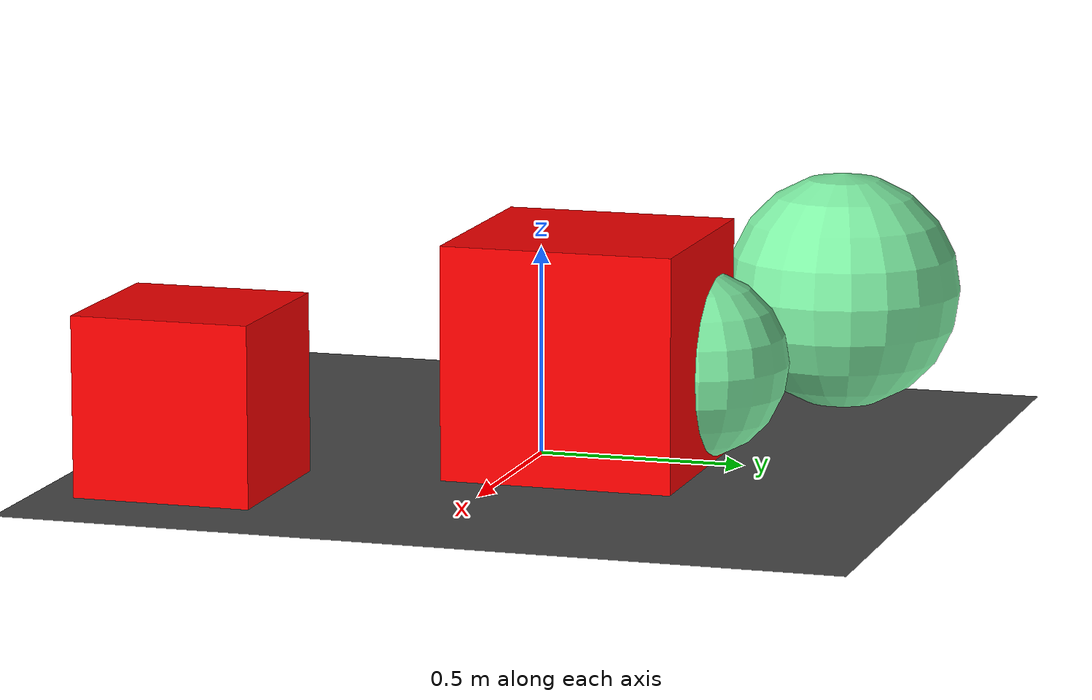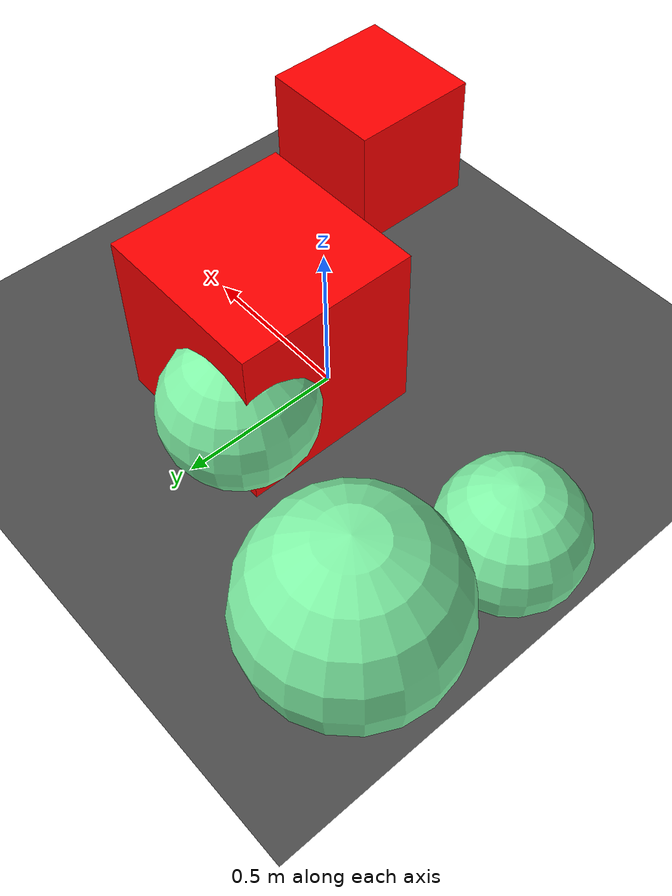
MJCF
<mujoco>
   <asset>
      <texture name="builtin_checker" builtin="checker" type="2d" rgb1="1 1 0" rgb2="0 0 1" width="200" height="200"/>
      <texture name="builtin_gradient" builtin="gradient" rgb1="0 .9 .3" rgb2="1 1 1" width="200" height="200"/>
      <texture name="builtin_flat" builtin="flat" rgb1="1 0 0" rgb2="1 0 0"  width="200" height="200"/>

      <material name="checker_mat" reflectance="0.9" texrepeat="3 3" texture="builtin_checker" texuniform="false" />
      <material name="gradient_mat" reflectance="1" texrepeat="1 1" texture="builtin_gradient" texuniform="true"/>
      <material name="flat_mat" reflectance="1" texrepeat="1 1" texture="builtin_flat" texuniform="true"/>
   </asset>

   <worldbody>
      <light diffuse=".9 .9 .9" pos="0 0 3" dir="0 0 -1"/>
     <geom type="plane" size="1 1 0.1" rgba="0.3 0.3 0.3 1"/>
<body pos="0.08569875701211727 0.14355828682890914 0.2789361791107061">
<joint type="free"/>
 <geom type="box" size="0.2789361791107061 0.2789361791107061 0.2789361791107061" material="flat_mat" />
</body>
<body pos="0.5683174337643669 -0.6761132960173031 0.21417974253564925">
<joint type="free"/>
 <geom type="box" size="0.21417974253564925 0.21417974253564925 0.21417974253564925" material="flat_mat" />
</body>
<body pos="-0.8190093036655868 0.09756795479742453 0.2056758377948933">
<joint type="free"/>
 <geom type="sphere" size="0.2056758377948933 0.2056758377948933 0.2056758377948933" material="gradient_mat" />
</body>
<body pos="-0.06470176813966488 0.36219959489778564 0.22613834273081587">
<joint type="free"/>
 <geom type="sphere" size="0.22613834273081587 0.22613834273081587 0.22613834273081587" material="gradient_mat" />
</body>
<body pos="-0.7434923616079959 0.5556444799916822 0.2925285787852294">
<joint type="free"/>
 <geom type="sphere" size="0.2925285787852294 0.2925285787852294 0.2925285787852294" material="gradient_mat" />
</body><camera euler="60 0 180" fovy="60" name="camera_a" pos="0 -1.5 1"></camera>   </worldbody>
</mujoco>
